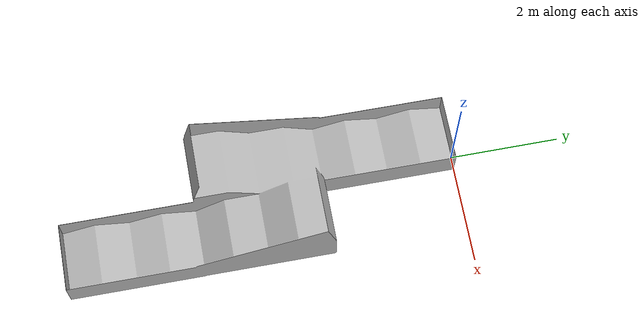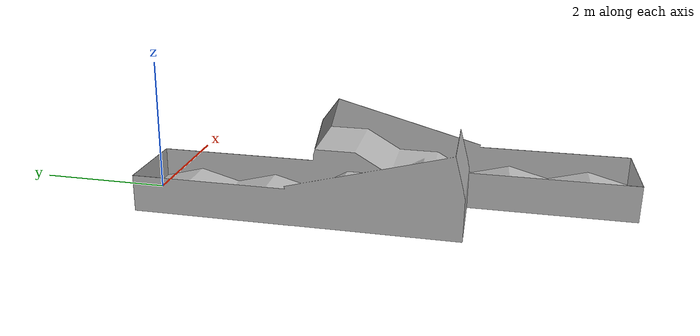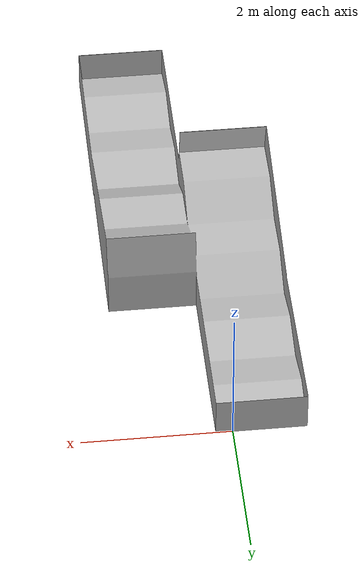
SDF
<?xml version="1.0" ?>
<sdf version="1.6">
  <model name="continuous_ramp_slope">
    <static>true</static>
    <pose>-1 0 0 1.5708 0 1.5708</pose>
    <link name="link">
      <collision name="collision">
        <geometry>
          <mesh>
            <scale>0.01 0.01 0.01</scale>
            <uri>model://continuous_ramp_slope/continuous_ramp_slope.dae</uri>
          </mesh>
        </geometry>
        <surface>
          <friction>
            <ode>
              <mu>100</mu>
              <mu2>50</mu2>
            </ode>
          </friction>
        </surface>
      </collision>
      <visual name="visual">
        <geometry>
          <mesh>
            <scale>0.01 0.01 0.01</scale>
            <uri>model://continuous_ramp_slope/continuous_ramp_slope.dae</uri>
          </mesh>
        </geometry>
      </visual>
    </link>
  </model>
</sdf>
